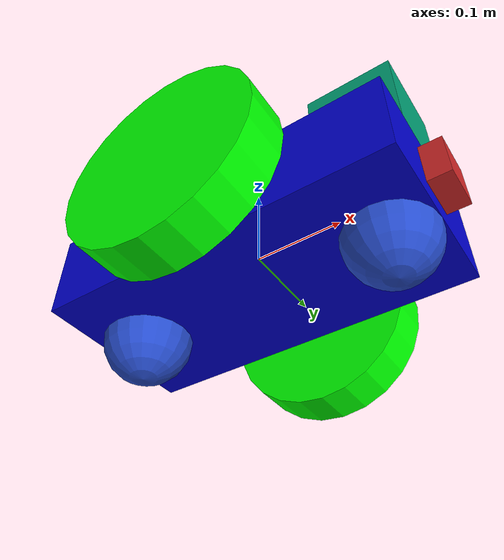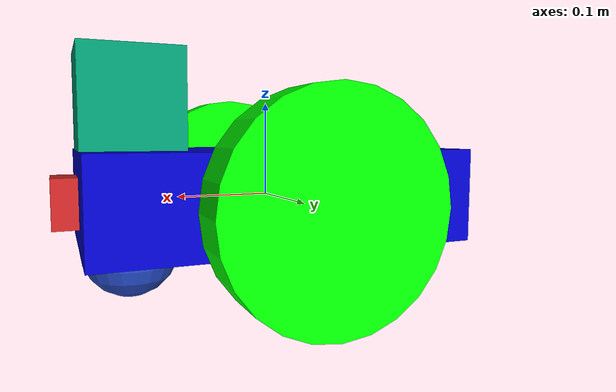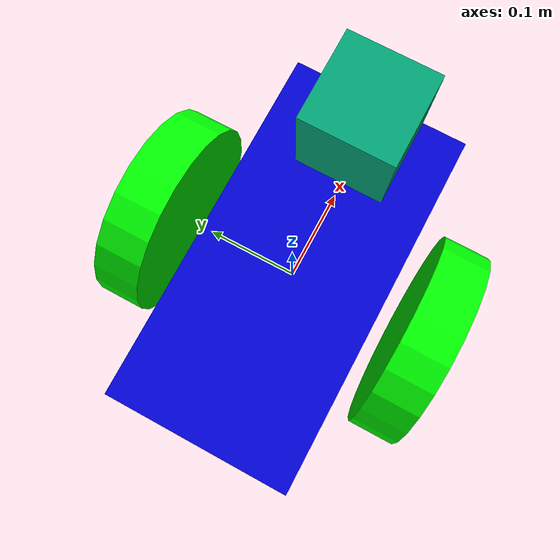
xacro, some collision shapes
<?xml version='1.0'?>

<robot name="my_robot" xmlns:xacro="http://www.ros.org/wiki/xacro">

  <xacro:include filename="$(find my_robot)/urdf/my_robot.gazebo" />
  <xacro:include filename="$(find my_robot)/urdf/materials.xacro" />

  <link name="robot_footprint"></link>

  <joint name="robot_footprint_joint" type="fixed">
    <origin xyz="0 0 0" rpy="0 0 0" />
    <parent link="robot_footprint"/>
    <child link="chassis" />
  </joint>

  <!-- Camera -->
  <joint type="fixed" name="camera_joint">
    <origin xyz="0.2 0 0" rpy=" 0 0 0"/>
    <axis xyz="0 1 0"/>
    <parent link="chassis"/>
    <child link="camera"/>
  </joint>

  <link name="camera">
    <inertial>
      <mass value="0.1"/>
      <origin xyz="0 0 0" rpy=" 0 0 0"/>
      <inertia
          ixx="1e-6" ixy="0" ixz="0"
          iyy="1e-6" iyz="0"
          izz="1e-6"
      />
    </inertial>

    <visual name='camera_visual'>
      <geometry>
        <box size="0.05 0.05 0.05"/>
      </geometry>
    </visual>
  </link>

  <!-- sensor -->
  <joint type="fixed" name="hokuyo_joint">
    <origin xyz="0.15 0 .1" rpy="0 0 0"/>
    <child link="hokuyo"/>
    <parent link="chassis"/>
    <axis xyz="0 1 0"/>
  </joint>

  <link name="hokuyo">
    <inertial>
      <mass value="1e-5"/>
      <origin xyz="0 0 0" rpy=" 0 0 0"/>
      <inertia
          ixx="1e-6" ixy="0"  ixz="0"
          iyy="1e-6" iyz="0"
          izz="1e-6"
      />
    </inertial>

    <collision name='hokuyo_collision'>
      <origin xyz="0 0 0" rpy=" 0 0 0"/>
      <geometry>
        <box size=".1 .1 .1"/>
      </geometry>
    </collision>

    <visual name='hokuyo_visual'>
      <origin xyz="0 0 0" rpy=" 0 0 0"/>
      <geometry>
        <mesh filename="package://my_robot/meshes/hokuyo.dae"/>
      </geometry>
    </visual>
  </link>

  <!-- Chassis -->
  <link name='chassis'>
    <pose>0 0 0.1 0 0 0</pose>

    <inertial>
      <mass value="15.0"/>
      <origin xyz="0.0 0 0" rpy=" 0 0 0"/>
      <inertia
          ixx="0.1" ixy="0" ixz="0"
          iyy="0.1" iyz="0"
          izz="0.1"
      />
    </inertial>

    <collision name='collision'>
      <origin xyz="0 0 0" rpy=" 0 0 0"/>
      <geometry>
        <box size=".4 .2 .1"/>
      </geometry>
    </collision>

    <visual name='chassis_visual'>
      <origin xyz="0 0 0" rpy=" 0 0 0"/>
      <geometry>
        <box size=".4 .2 .1"/>
      </geometry>
      <material name="blue"/>
    </visual>

    <collision name='back_caster_collision'>
      <origin xyz="-0.15 0 -0.05" rpy=" 0 0 0"/>
      <geometry>
        <sphere radius="0.0499"/>
      </geometry>
    </collision>

    <visual name='back_caster_visual'>
      <origin xyz="-0.15 0 -0.05" rpy=" 0 0 0"/>
      <geometry>
        <sphere radius="0.05"/>
      </geometry>
    </visual>

    <collision name='front_caster_collision'>
      <origin xyz="0.15 0 -0.05" rpy=" 0 0 0"/>
      <geometry>
        <sphere radius="0.0499"/>
      </geometry>
    </collision>

    <visual name='front_caster_visual'>
      <origin xyz="0.15 0 -0.05" rpy=" 0 0 0"/>
      <geometry>
        <sphere radius="0.05"/>
      </geometry>
    </visual>
  </link>

  <!-- Left Wheel -->
  <joint type="continuous" name="left_wheel_hinge">
    <origin xyz="0 0.15 0" rpy="0 0 0"/>
    <child link="left_wheel"/>
    <parent link="chassis"/>
    <axis xyz="0 1 0" rpy="0 0 0"/>
    <limit effort="10000" velocity="1000"/>
    <dynamics damping="1.0" friction="1.0"/>
  </joint>

  <link name="left_wheel">
    <inertial>
      <mass value="5.0"/>
      <inertia
          ixx="0.1" ixy="0" ixz="0"
          iyy="0.1" iyz="0"
          izz="0.1"
      />
    </inertial>

    <collision name='left_wheel_collision'>
      <origin xyz="0.0 0 0" rpy=" 0 1.5707 1.5707"/>
      <geometry>
        <cylinder radius="0.1" length="0.048"/>
      </geometry>
    </collision>

    <visual name='left_wheel_visual'>
      <origin xyz="0.0 0 0" rpy=" 0 1.5707 1.5707"/>
      <geometry>
        <cylinder radius="0.11" length="0.05"/>
      </geometry>
      <material name="green"/>
    </visual>
  </link>

  <!-- Right Wheel -->
  <joint type="continuous" name="right_wheel_hinge">
    <origin xyz="0 -0.15 0" rpy="0 0 0"/>
    <child link="right_wheel"/>
    <parent link="chassis"/>
    <axis xyz="0 1 0" rpy="0 0 0"/>
    <limit effort="10000" velocity="1000"/>
    <dynamics damping="1.0" friction="1.0"/>
  </joint>

  <link name="right_wheel">
    <inertial>
      <mass value="5.0"/>
      <inertia
          ixx="0.1" ixy="0" ixz="0"
          iyy="0.1" iyz="0"
          izz="0.1"
      />
    </inertial>

    <collision name='right_wheel_collision'>
      <origin xyz="0.0 0 0" rpy=" 0 1.5707 1.5707"/>
      <geometry>
        <cylinder radius="0.1" length="0.048"/>
      </geometry>
    </collision>

    <visual name='right_wheel_visual'>
      <origin xyz="0.0 0 0" rpy=" 0 1.5707 1.5707"/>
      <geometry>
        <cylinder radius="0.11" length="0.05"/>
      </geometry>
      <material name="green"/>
    </visual>
  </link>

</robot>

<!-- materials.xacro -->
<robot>
  <material name="blue">
    <color rgba="0.0 0.0 0.8 1.0"/>
  </material>

  <material name="green">
    <color rgba="0.0 1.0 0.0 1.0"/>
  </material>
</robot>
